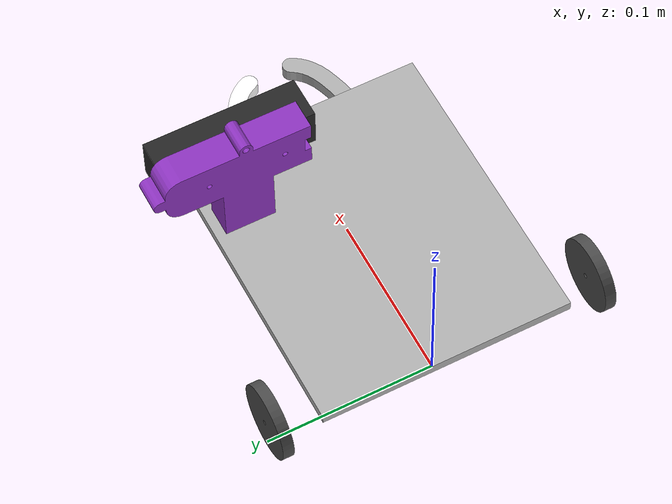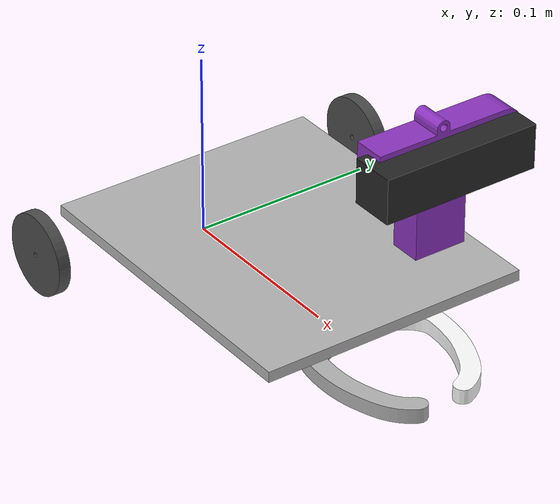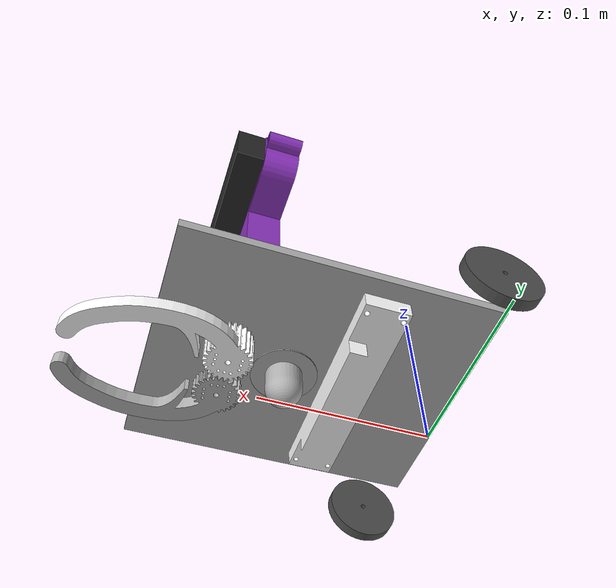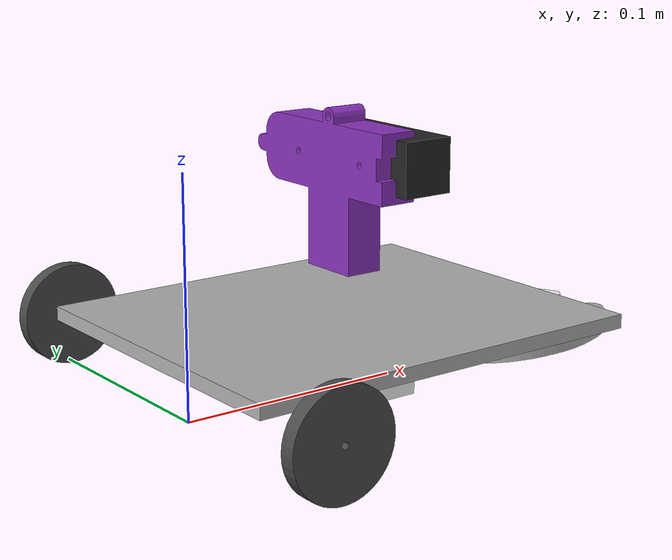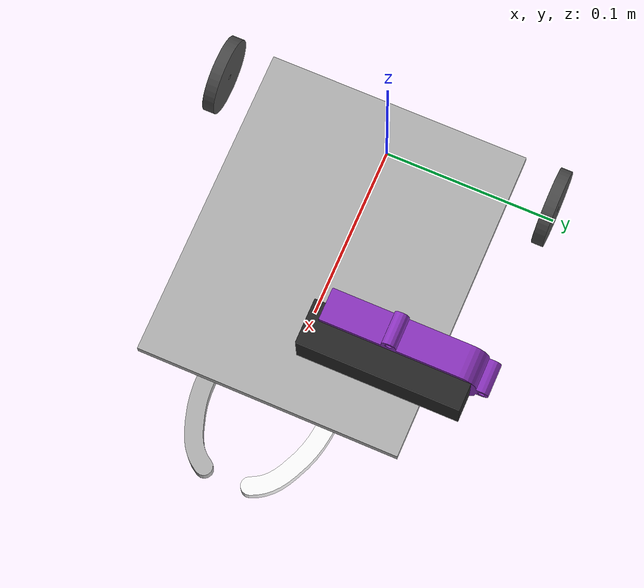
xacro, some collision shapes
<?xml version="1.0"?>
<robot name="trident" xmlns:xacro="http://www.ros.org/wiki/xacro">

  <xacro:property name="pkg" value="package://trident_description/meshes"/>
  <xacro:property name="PI" value="3.14159265358979"/>

  <!-- Drive wheels (measured from the exported wheel mesh) -->
  <xacro:property name="wheel_radius"     value="0.022"/>
  <xacro:property name="wheel_width"      value="0.00666"/>
  <xacro:property name="wheel_y"          value="0.09777"/>   <!-- separation = 2 * wheel_y = 0.19554 -->
  <!-- N20 gearmotor: placeholders for a 300 rpm / 6 V variant. Replace with your motor's datasheet values. -->
  <xacro:property name="wheel_effort"     value="0.05"/>      <!-- N m, stall torque at the wheel -->
  <xacro:property name="wheel_velocity"   value="31.4"/>      <!-- rad/s, no-load speed (300 rpm) -->
  <!-- Acceleration limits for the diff drive, applied to speeding up and to braking.
       Without the braking limit the wheels stop dead and the robot skids and yaws. -->
  <xacro:property name="drive_accel_linear"  value="1.0"/>
  <xacro:property name="drive_accel_angular" value="8.0"/>    <!-- rad/s^2 -->

  <xacro:property name="caster_xyz_x"     value="0.084973"/>
  <xacro:property name="caster_xyz_z"     value="-0.01076"/>
  <xacro:property name="caster_radius"    value="${wheel_radius + caster_xyz_z}"/>

  <!-- Gripper, MG995 at 4.8 V: 8.5 kg cm, 0.20 s/60 deg -->
  <xacro:property name="grip_lower"       value="-1.0"/>      <!-- rad, opening (jaws clear the chassis to beyond -1.5) -->
  <xacro:property name="grip_upper"       value="0.09"/>      <!-- rad, closing; jaws touch each other at ~0.096 -->
  <xacro:property name="grip_effort"      value="0.83"/>
  <xacro:property name="grip_velocity"    value="5.2"/>       <!-- rad/s -->
  <xacro:property name="grip_damping"     value="0.005"/>

  <!-- D435 in the holder. camera_link = holder pocket floor centre, camera back rests on it, lens faces +X. -->
  <xacro:property name="d435_len_x"       value="0.025"/>
  <xacro:property name="d435_len_y"       value="0.090"/>
  <xacro:property name="d435_len_z"       value="0.025"/>
  <xacro:property name="d435_mass"        value="0.072"/>
  <xacro:property name="d435_center_y"    value="0.00025"/>   <!-- pocket end wall at y = 45.25 mm -->
  <!-- Depth origin = left IR imager: 4.2 mm behind the front glass, 17.5 mm toward the camera's left (+Y) -->
  <xacro:property name="d435_depth_x"     value="${d435_len_x - 0.0042}"/>
  <xacro:property name="d435_depth_y"     value="${d435_center_y + 0.0175}"/>
  <xacro:property name="d435_width"       value="848"/>
  <xacro:property name="d435_height"      value="480"/>
  <xacro:property name="d435_rate"        value="60"/>

  <!-- IR line sensor array: channels sit in a row across the board (along Y) -->
  <xacro:property name="ir_channels"      value="8"/>
  <xacro:property name="ir_pitch"         value="0.015"/>     <!-- m, centre to centre -->
  <xacro:property name="ir_center_y"      value="0.0007"/>    <!-- board centre in ir_base_link -->
  <xacro:property name="ir_center_x"      value="-0.008"/>
  <xacro:property name="ir_rate"          value="20"/>        <!-- Hz -->

  <!-- IMU (MPU6050 class) flat on the chassis plate between the wheels -->
  <xacro:property name="imu_xyz"          value="0.03 0 0.012"/>
  <xacro:property name="imu_rate"         value="100"/>       <!-- Hz -->
  <xacro:property name="imu_gyro_noise"   value="0.002"/>     <!-- rad/s, standard deviation -->
  <xacro:property name="imu_accel_noise"  value="0.02"/>      <!-- m/s^2, standard deviation -->

  <!-- ============================ base ============================ -->

  <link name="base_footprint"/>

  <joint name="base_footprint_joint" type="fixed">
    <parent link="base_footprint"/>
    <child link="base_link"/>
    <origin xyz="0 0 ${wheel_radius}" rpy="0 0 0"/>
  </joint>

  <link name="base_link">
    <inertial>
      <origin xyz="0.050247510628613 -0.00550934888470665 0.0135868978977812" rpy="0 0 0"/>
      <mass value="0.425561953955461"/>
      <inertia ixx="0.000502791654862014" ixy="-4.44137980517146E-06" ixz="2.17973091122719E-07"
               iyy="0.000538550555524092" iyz="-8.95288854408929E-09" izz="0.00102844541313249"/>
    </inertial>
    <visual>
      <origin xyz="0 0 0" rpy="0 0 0"/>
      <geometry><mesh filename="${pkg}/base_link.STL"/></geometry>
      <material name="chassis_grey"><color rgba="0.698 0.698 0.698 1"/></material>
    </visual>
    <!-- Chassis plate: 180 x 150 x 6 mm, top face at z = +11 mm above the axle -->
    <collision name="plate">
      <origin xyz="0.073 0 0.008" rpy="0 0 0"/>
      <geometry><box size="0.180 0.150 0.006"/></geometry>
    </collision>
    <!-- Electronics boxes and servo on top of the plate (coarse) -->
    <collision name="top_volume">
      <origin xyz="0.073 0 0.0185" rpy="0 0 0"/>
      <geometry><box size="0.180 0.110 0.015"/></geometry>
    </collision>
  </link>

  <!-- ============================ wheels ============================ -->

  <xacro:macro name="drive_wheel" params="side y">
    <link name="${side}_wheel_link">
      <inertial>
        <origin xyz="0 0 0" rpy="0 0 0"/>
        <mass value="0.01008"/>
        <inertia ixx="1.2626E-06" ixy="0" ixz="0" iyy="2.4506E-06" iyz="0" izz="1.2626E-06"/>
      </inertial>
      <visual>
        <origin xyz="0 0 0" rpy="0 0 0"/>
        <geometry><mesh filename="${pkg}/${side}_wheel_link.STL"/></geometry>
        <material name="wheel_black"><color rgba="0.298 0.298 0.298 1"/></material>
      </visual>
      <collision>
        <!-- cylinder axis (z) rotated onto the joint axis (y) -->
        <origin xyz="0 0 0" rpy="${PI/2} 0 0"/>
        <geometry><cylinder radius="${wheel_radius}" length="${wheel_width}"/></geometry>
      </collision>
    </link>

    <joint name="${side}_wheel_joint" type="continuous">
      <parent link="base_link"/>
      <child link="${side}_wheel_link"/>
      <origin xyz="0 ${y} 0" rpy="0 0 0"/>
      <axis xyz="0 1 0"/>
      <limit effort="${wheel_effort}" velocity="${wheel_velocity}"/>
      <dynamics damping="0.0001" friction="0"/>
    </joint>
  </xacro:macro>

  <xacro:drive_wheel side="left"  y="${wheel_y}"/>
  <xacro:drive_wheel side="right" y="${-wheel_y}"/>

  <!-- ============================ caster ============================ -->

  <link name="castor_ball">
    <inertial>
      <origin xyz="0 0 0.003155" rpy="0 0 0"/>
      <mass value="0.0089358"/>
      <inertia ixx="6.2755E-07" ixy="0" ixz="0" iyy="6.2755E-07" iyz="0" izz="5.9168E-07"/>
    </inertial>
    <visual>
      <origin xyz="0 0 0" rpy="0 0 0"/>
      <geometry><mesh filename="${pkg}/castor_ball.STL"/></geometry>
      <material name="chassis_grey"/>
    </visual>
    <collision>
      <origin xyz="0 0 0" rpy="0 0 0"/>
      <geometry><sphere radius="${caster_radius}"/></geometry>
    </collision>
  </link>

  <joint name="castor_ball_joint" type="fixed">
    <parent link="base_link"/>
    <child link="castor_ball"/>
    <origin xyz="${caster_xyz_x} 0 ${caster_xyz_z}" rpy="0 0 0"/>
  </joint>

  <!-- ============================ gripper ============================ -->

  <link name="gripper_drive_link">
    <inertial>
      <!-- PLA, 1240 kg/m3, computed from the mesh (11.81 cm3) -->
      <origin xyz="0.03072 -0.01303 0" rpy="0 0 0"/>
      <mass value="0.014648"/>
      <inertia ixx="1.7643E-06" ixy="2.1546E-06" ixz="0" iyy="1.3239E-05" iyz="0" izz="1.4847E-05"/>
    </inertial>
    <visual>
      <origin xyz="0 0 0" rpy="0 0 0"/>
      <geometry><mesh filename="${pkg}/gripper_drive_link.STL"/></geometry>
      <material name="chassis_grey"/>
    </visual>
    <collision>
      <origin xyz="0 0 0" rpy="0 0 0"/>
      <geometry><mesh filename="${pkg}/gripper_drive_link.STL"/></geometry>
    </collision>
  </link>

  <joint name="gripper_drive_joint" type="revolute">
    <parent link="base_link"/>
    <child link="gripper_drive_link"/>
    <origin xyz="0.11997 -0.0125 -0.00985" rpy="0 0 0"/>
    <axis xyz="0 0 1"/>
    <limit lower="${grip_lower}" upper="${grip_upper}" effort="${grip_effort}" velocity="${grip_velocity}"/>
    <dynamics damping="${grip_damping}" friction="0"/>
  </joint>

  <link name="gripper_follower_link">
    <inertial>
      <origin xyz="0.0233005821511302 0.00658223410359155 -0.00252490161223871" rpy="0 0 0"/>
      <!-- PLA, 1240 kg/m3, computed from the mesh (16.29 cm3) -->
      <mass value="0.020201"/>
      <inertia ixx="2.3362E-06" ixy="-1.8337E-06" ixz="1.1640E-06"
               iyy="1.8337E-05" iyz="3.2888E-07" izz="1.9772E-05"/>
    </inertial>
    <visual>
      <origin xyz="0 0 0" rpy="0 0 0"/>
      <geometry><mesh filename="${pkg}/gripper_follower_link.STL"/></geometry>
      <material name="jaw_white"><color rgba="1 1 1 1"/></material>
    </visual>
    <collision>
      <origin xyz="0 0 0" rpy="0 0 0"/>
      <geometry><mesh filename="${pkg}/gripper_follower_link.STL"/></geometry>
    </collision>
  </link>

  <joint name="gripper_follower_joint" type="revolute">
    <parent link="base_link"/>
    <child link="gripper_follower_link"/>
    <origin xyz="0.11997 0.0125 -0.00485" rpy="0 0 0"/>
    <axis xyz="0 0 1"/>
    <!-- mirror of the drive limits: lower = -upper_drive, upper = -lower_drive -->
    <limit lower="${-grip_upper}" upper="${-grip_lower}" effort="${grip_effort}" velocity="${grip_velocity}"/>
    <dynamics damping="${grip_damping}" friction="0"/>
    <mimic joint="gripper_drive_joint" multiplier="-1" offset="0"/>
  </joint>

  <!-- ============================ camera ============================ -->

  <!-- Holder (D435 casing part from CAD). Origin = pocket floor centre. -->
  <link name="camera_link">
    <inertial>
      <origin xyz="-0.0007458 0.0041096 -0.013307" rpy="0 0 0"/>
      <mass value="0.058816"/>
      <inertia ixx="3.0709E-05" ixy="-2.7871E-07" ixz="-4.3639E-08"
               iyy="7.686E-06" iyz="1.0273E-07" izz="2.5745E-05"/>
    </inertial>
    <visual>
      <origin xyz="0 0 0" rpy="0 0 0"/>
      <geometry><mesh filename="${pkg}/camera_link.STL"/></geometry>
      <material name="holder_purple"><color rgba="0.55 0.2 0.75 1"/></material>
    </visual>
    <collision>
      <origin xyz="0 0 0" rpy="0 0 0"/>
      <geometry><mesh filename="${pkg}/camera_link.STL"/></geometry>
    </collision>
  </link>

  <joint name="camera_joint" type="fixed">
    <parent link="base_link"/>
    <child link="camera_link"/>
    <origin xyz="0.11697 0.054 0.06275" rpy="0 0 0"/>
  </joint>

  <!-- D435 body (not in the CAD assembly): 90 x 25 x 25 mm, 72 g -->
  <link name="camera_body_link">
    <inertial>
      <origin xyz="0 0 0" rpy="0 0 0"/>
      <mass value="${d435_mass}"/>
      <inertia ixx="${d435_mass/12*(d435_len_y**2 + d435_len_z**2)}" ixy="0" ixz="0"
               iyy="${d435_mass/12*(d435_len_x**2 + d435_len_z**2)}" iyz="0"
               izz="${d435_mass/12*(d435_len_x**2 + d435_len_y**2)}"/>
    </inertial>
    <visual>
      <origin xyz="0 0 0" rpy="0 0 0"/>
      <geometry><box size="${d435_len_x} ${d435_len_y} ${d435_len_z}"/></geometry>
      <material name="d435_grey"><color rgba="0.15 0.15 0.15 1"/></material>
    </visual>
    <collision>
      <origin xyz="0 0 0" rpy="0 0 0"/>
      <geometry><box size="${d435_len_x} ${d435_len_y} ${d435_len_z}"/></geometry>
    </collision>
  </link>

  <joint name="camera_body_joint" type="fixed">
    <parent link="camera_link"/>
    <child link="camera_body_link"/>
    <origin xyz="${d435_len_x/2} ${d435_center_y} 0" rpy="0 0 0"/>
  </joint>

  <!-- Depth origin (left IR imager). X forward, same convention as the realsense driver's camera_depth_frame. -->
  <link name="camera_depth_frame"/>
  <joint name="camera_depth_joint" type="fixed">
    <parent link="camera_link"/>
    <child link="camera_depth_frame"/>
    <origin xyz="${d435_depth_x} ${d435_depth_y} 0" rpy="0 0 0"/>
  </joint>

  <!-- Optical frame: same origin, Z forward, X right, Y down -->
  <link name="camera_depth_optical_frame"/>
  <joint name="camera_depth_optical_joint" type="fixed">
    <parent link="camera_depth_frame"/>
    <child link="camera_depth_optical_frame"/>
    <origin xyz="0 0 0" rpy="${-PI/2} 0 ${-PI/2}"/>
  </joint>

  <!-- ============================ IR array ============================ -->
  <!-- Origin = sensing (bottom) face, 7.4 mm above the floor. Mass is a placeholder
       (export had 0, which Gazebo rejects); weigh the board and replace. -->

  <link name="ir_base_link">
    <inertial>
      <origin xyz="-0.00644 0.00058 0.01287" rpy="0 0 0"/>
      <mass value="0.02"/>
      <inertia ixx="2.84E-05" ixy="0" ixz="0" iyy="1.79E-06" iyz="0" izz="2.88E-05"/>
    </inertial>
    <visual>
      <origin xyz="0 0 0" rpy="0 0 0"/>
      <geometry><mesh filename="${pkg}/ir_base_link.STL"/></geometry>
      <material name="jaw_white"/>
    </visual>
    <collision>
      <origin xyz="-0.008 0.00073 0.010" rpy="0 0 0"/>
      <geometry><box size="0.026 0.129 0.020"/></geometry>
    </collision>
  </link>

  <joint name="ir_array_joint" type="fixed">
    <parent link="base_link"/>
    <child link="ir_base_link"/>
    <origin xyz="0.0561226758708309 -0.000576899513916443 -0.01462" rpy="0 0 0"/>
  </joint>

  <!-- Sensor frame for range/reflectance readings: +X points at the floor -->
  <link name="ir_sensor_frame"/>
  <joint name="ir_sensor_joint" type="fixed">
    <parent link="ir_base_link"/>
    <child link="ir_sensor_frame"/>
    <origin xyz="0 0 0" rpy="0 ${PI/2} 0"/>
  </joint>

  <!-- ============================ IMU ============================ -->
  <!-- Frame only, the board weighs next to nothing. Axes match base_link. -->
  <link name="imu_link"/>
  <joint name="imu_joint" type="fixed">
    <parent link="base_link"/>
    <child link="imu_link"/>
    <origin xyz="${imu_xyz}" rpy="0 0 0"/>
  </joint>

  <!-- Gazebo-only tags (friction, plugins, sensors) -->
  <xacro:include filename="$(find trident_description)/urdf/trident.gazebo.xacro"/>

</robot>
